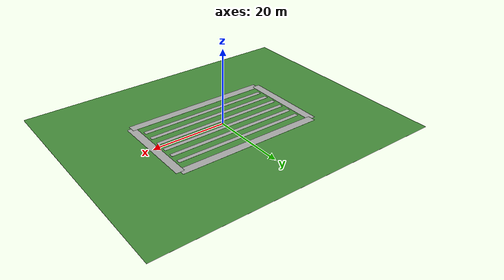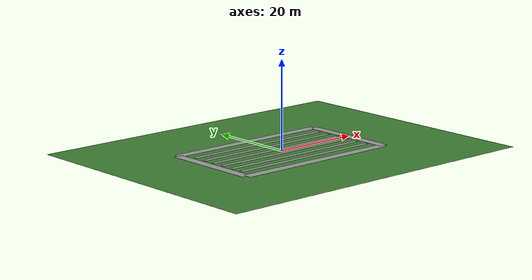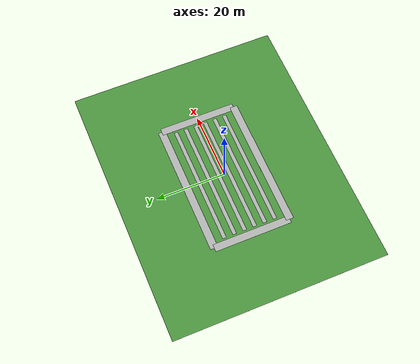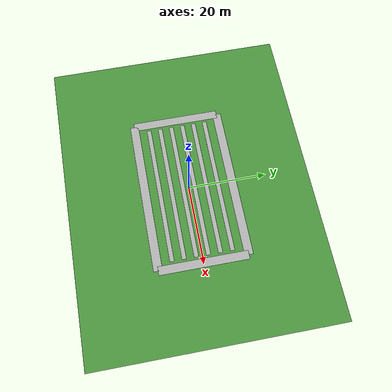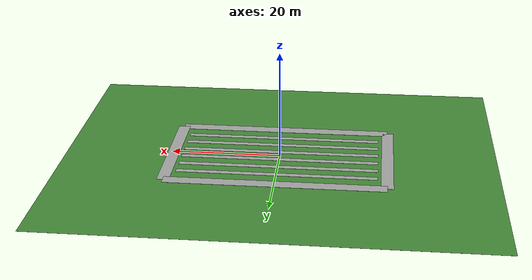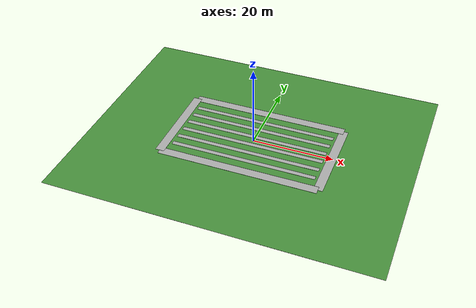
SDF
<sdf version="1.6">
 <world name="default">
  <model name="ground_cover">
   <static>true</static>
   <link name="grass">
    <pose>0 0 0.005 0 0 0</pose>
    <collision name="grass_c"><geometry><box><size>79.00 62.00 0.01</size></box></geometry></collision>
    <visual name="grass_v">
     <geometry><box><size>79.00 62.00 0.01</size></box></geometry>
     <material>
      <script>
       <uri>model://orchard/materials/scripts</uri>
       <uri>model://orchard/materials/textures</uri>
       <name>Orchard/Grass</name>
      </script>
     </material>
    </visual>
   </link>
  </model>
  <model name="headland_track">
   <static>true</static>
   <link name="track_n">
    <pose>0 11.200 0.013 0 0 0</pose>
    <visual name="track_n_v">
     <geometry><box><size>39.400 2.200 0.014</size></box></geometry>
     <material>
      <script>
       <uri>model://orchard/materials/scripts</uri>
       <uri>model://orchard/materials/textures</uri>
       <name>Orchard/Track</name>
      </script>
     </material>
    </visual>
   </link>
   <link name="track_s">
    <pose>0 -11.200 0.013 0 0 0</pose>
    <visual name="track_s_v">
     <geometry><box><size>39.400 2.200 0.014</size></box></geometry>
     <material>
      <script>
       <uri>model://orchard/materials/scripts</uri>
       <uri>model://orchard/materials/textures</uri>
       <name>Orchard/Track</name>
      </script>
     </material>
    </visual>
   </link>
   <link name="track_e">
    <pose>19.700 0 0.013 0 0 0</pose>
    <visual name="track_e_v">
     <geometry><box><size>2.200 22.400 0.014</size></box></geometry>
     <material>
      <script>
       <uri>model://orchard/materials/scripts</uri>
       <uri>model://orchard/materials/textures</uri>
       <name>Orchard/Track</name>
      </script>
     </material>
    </visual>
   </link>
   <link name="track_w">
    <pose>-19.700 0 0.013 0 0 0</pose>
    <visual name="track_w_v">
     <geometry><box><size>2.200 22.400 0.014</size></box></geometry>
     <material>
      <script>
       <uri>model://orchard/materials/scripts</uri>
       <uri>model://orchard/materials/textures</uri>
       <name>Orchard/Track</name>
      </script>
     </material>
    </visual>
   </link>
  </model>
  <model name="soil_0">
   <static>true</static>
   <link name="soil_0_l">
    <pose>0 -7.500 0.011 0 0 0</pose>
    <visual name="soil_0_l_v">
     <geometry><box><size>36.00 1.1 0.012</size></box></geometry>
     <material>
      <script>
       <uri>model://orchard/materials/scripts</uri>
       <uri>model://orchard/materials/textures</uri>
       <name>Orchard/Strip</name>
      </script>
     </material>
    </visual>
   </link>
  </model>
  <model name="soil_1">
   <static>true</static>
   <link name="soil_1_l">
    <pose>0 -4.500 0.011 0 0 0</pose>
    <visual name="soil_1_l_v">
     <geometry><box><size>36.00 1.1 0.012</size></box></geometry>
     <material>
      <script>
       <uri>model://orchard/materials/scripts</uri>
       <uri>model://orchard/materials/textures</uri>
       <name>Orchard/Strip</name>
      </script>
     </material>
    </visual>
   </link>
  </model>
  <model name="soil_2">
   <static>true</static>
   <link name="soil_2_l">
    <pose>0 -1.500 0.011 0 0 0</pose>
    <visual name="soil_2_l_v">
     <geometry><box><size>36.00 1.1 0.012</size></box></geometry>
     <material>
      <script>
       <uri>model://orchard/materials/scripts</uri>
       <uri>model://orchard/materials/textures</uri>
       <name>Orchard/Strip</name>
      </script>
     </material>
    </visual>
   </link>
  </model>
  <model name="soil_3">
   <static>true</static>
   <link name="soil_3_l">
    <pose>0 1.500 0.011 0 0 0</pose>
    <visual name="soil_3_l_v">
     <geometry><box><size>36.00 1.1 0.012</size></box></geometry>
     <material>
      <script>
       <uri>model://orchard/materials/scripts</uri>
       <uri>model://orchard/materials/textures</uri>
       <name>Orchard/Strip</name>
      </script>
     </material>
    </visual>
   </link>
  </model>
  <model name="soil_4">
   <static>true</static>
   <link name="soil_4_l">
    <pose>0 4.500 0.011 0 0 0</pose>
    <visual name="soil_4_l_v">
     <geometry><box><size>36.00 1.1 0.012</size></box></geometry>
     <material>
      <script>
       <uri>model://orchard/materials/scripts</uri>
       <uri>model://orchard/materials/textures</uri>
       <name>Orchard/Strip</name>
      </script>
     </material>
    </visual>
   </link>
  </model>
  <model name="soil_5">
   <static>true</static>
   <link name="soil_5_l">
    <pose>0 7.500 0.011 0 0 0</pose>
    <visual name="soil_5_l_v">
     <geometry><box><size>36.00 1.1 0.012</size></box></geometry>
     <material>
      <script>
       <uri>model://orchard/materials/scripts</uri>
       <uri>model://orchard/materials/textures</uri>
       <name>Orchard/Strip</name>
      </script>
     </material>
    </visual>
   </link>
  </model>
 </world>
</sdf>
